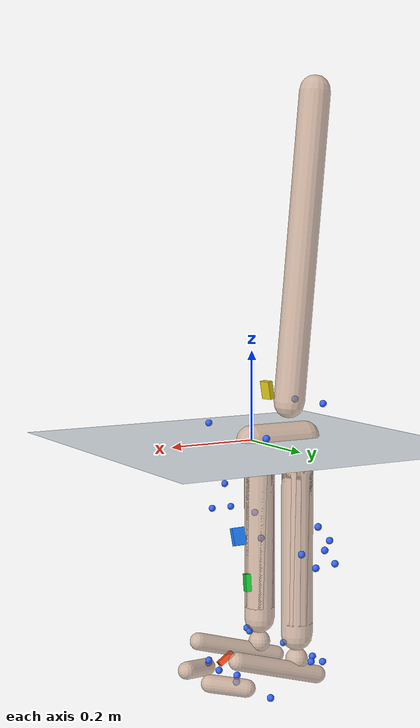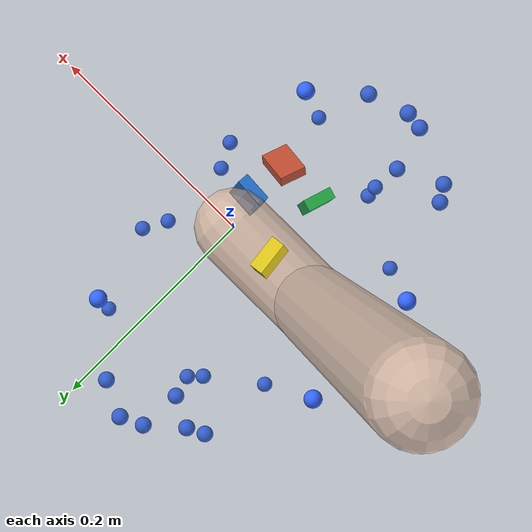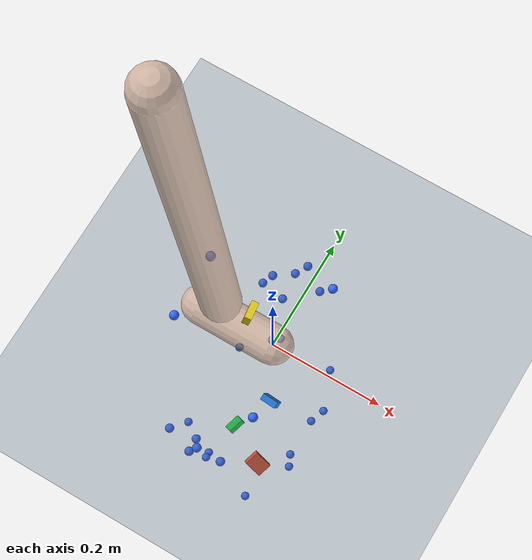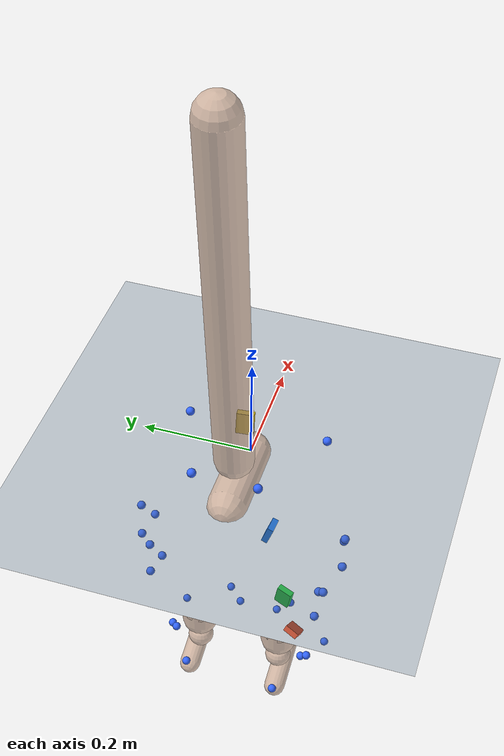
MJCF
<mujoco model="AB10">
  <compiler angle="radian" autolimits="true"/>
  <option timestep="0.005" gravity="0 0 -9.81"><flag contact="disable"/></option>
  <visual><global offwidth="1280" offheight="720"/></visual>
  <default><joint limited="false" damping="0"/><geom contype="0" conaffinity="0"/></default>
  <asset>
    <texture name="grid" type="2d" builtin="checker" rgb1="0.2 0.3 0.4" rgb2="0.3 0.4 0.5" width="512" height="512"/>
    <material name="grid" texture="grid" texrepeat="2 2" texuniform="true"/>
    <material name="skin" rgba="0.8 0.65 0.55 0.7"/>
  </asset>
  <worldbody>
    <light pos="0 0 4" dir="0 0 -1"/>
    <geom name="floor" type="plane" size="0 0 0.05" material="grid"/>
    <body name="pelvis" pos="0 0 0" quat="1 0 0 0">
      <joint name="pelvis_tx" type="slide" axis="1 0 0"/>
      <joint name="pelvis_ty" type="slide" axis="0 0 1"/>
      <joint name="pelvis_tz" type="slide" axis="0 -1 0"/>
      <joint name="pelvis_tilt" type="hinge" axis="0 -1 0"/>
      <joint name="pelvis_list" type="hinge" axis="1 0 0"/>
      <joint name="pelvis_rotation" type="hinge" axis="0 0 1"/>
      <inertial pos="-0.068270285 0 0" mass="13.4215" diaginertia="0.13421502 0.13421502 0.13421502"/>
      <geom type="capsule" fromto="0 0 0 -0.13654057 0 0" size="0.035" material="skin" mass="0"/>
      <site name="m_R_ASIS" pos="0.038416114 -0.12723426 0.026757285" size="0.008" rgba="0.2 0.4 1 1" group="2"/>
      <site name="m_L_ASIS" pos="0.039418578 0.12679107 0.023472" size="0.008" rgba="0.2 0.4 1 1" group="2"/>
      <site name="m_L_PSIS" pos="-0.15084693 0.056858622 0.078959827" size="0.008" rgba="0.2 0.4 1 1" group="2"/>
      <site name="m_R_PSIS" pos="-0.14918613 -0.057842359 0.076927052" size="0.008" rgba="0.2 0.4 1 1" group="2"/>
      <body name="femur_r" pos="-0.068270285 -0.080630393 -0.063828371" quat="1 0 0 0">
        <joint name="hip_flexion_r" type="hinge" axis="0 -1 0"/>
        <joint name="hip_adduction_r" type="hinge" axis="1 0 0"/>
        <joint name="hip_rotation_r" type="hinge" axis="0 0 1"/>
        <inertial pos="0 0 -0.16981628" mass="10.6002" diaginertia="0.10600217 0.10600217 0.10600217"/>
        <geom type="capsule" fromto="0 0 0 0 0 -0.33963257" size="0.035" material="skin" mass="0"/>
        <site name="m_R_Thigh_Upper" pos="0.030077259 -0.10829872 -0.066636975" size="0.008" rgba="0.2 0.4 1 1" group="2"/>
        <site name="m_R_Thigh_Front" pos="0.06919928 -0.099423219 -0.12010598" size="0.008" rgba="0.2 0.4 1 1" group="2"/>
        <site name="m_R_Thigh_Rear" pos="0.012768813 -0.11081967 -0.12308051" size="0.008" rgba="0.2 0.4 1 1" group="2"/>
        <site name="m_R_Knee_Lat" pos="0.00022959524 -0.057643993 -0.40618089" size="0.008" rgba="0.2 0.4 1 1" group="2"/>
        <site name="imu_thigh" type="box" size="0.02 0.015 0.006" pos="0.083379247 0.046599206 -0.15776131" quat="-0.43490094 -0.55937127 0.58547114 -0.39393972" rgba="0.1 0.5 1 1" group="1"/>
        <body name="tibia_r" pos="0 0 0" quat="1 0 0 0">
          <joint name="knee_r_translation1" type="slide" axis="1 0 0"/>
          <joint name="knee_r_translation2" type="slide" axis="0 0 1"/>
          <joint name="knee_angle_r" type="hinge" axis="0 -1 0"/>
          <inertial pos="0 0 -0.18359179" mass="4.2252" diaginertia="0.042252032 0.042252032 0.042252032"/>
          <geom type="capsule" fromto="0 0 0 0 0 -0.36718358" size="0.035" material="skin" mass="0"/>
          <site name="m_R_Shank_Upper" pos="-0.041103485 -0.090265539 -0.13977425" size="0.008" rgba="0.2 0.4 1 1" group="2"/>
          <site name="m_R_Shank_Front" pos="-0.00016861335 -0.073296684 -0.19551104" size="0.008" rgba="0.2 0.4 1 1" group="2"/>
          <site name="m_R_Shank_Rear" pos="-0.052502674 -0.079824174 -0.20083706" size="0.008" rgba="0.2 0.4 1 1" group="2"/>
          <site name="m_R_Ankle_Lat" pos="-0.00090786675 -0.046396653 -0.41126888" size="0.008" rgba="0.2 0.4 1 1" group="2"/>
          <site name="imu_shank" type="box" size="0.02 0.015 0.006" pos="0.033474456 0.0010479344 -0.28011076" quat="0.70053327 0.16387647 0.69287179 -0.048232079" rgba="0.1 0.8 0.2 1" group="1"/>
          <body name="talus_r" pos="0 0 -0.4228413" quat="1 0 0 0">
            <joint name="ankle_angle_r" type="hinge" axis="-0.10501355 -0.97912632 -0.17402245"/>
            <inertial pos="0 0 0" mass="0.113964" diaginertia="0.0011396367 0.0011396367 0.0011396367"/>
            <geom type="sphere" size="0.025" material="skin" mass="0"/>
            <body name="calcn_r" pos="-0.04795807 -0.0077881466 -0.04125161" quat="1 0 0 0">
              <joint name="subtalar_angle_r" type="hinge" axis="0.78717961 0.12094949 0.60474746"/>
              <inertial pos="0.10238969 0 0.030716907" mass="1.42455" diaginertia="0.014245459 0.014245459 0.014245459"/>
              <geom type="capsule" fromto="0 0 0 0.20477938 0 0.061433813" size="0.02" material="skin" mass="0"/>
              <site name="m_R_Heel" pos="-0.023432593 -0.0017730639 0.023436829" size="0.008" rgba="0.2 0.4 1 1" group="2"/>
              <site name="m_R_Toe_Lat" pos="0.14294387 -0.064441714 -0.015746494" size="0.008" rgba="0.2 0.4 1 1" group="2"/>
              <site name="m_R_Toe_Med" pos="0.17841899 0.048083967 0.0022326382" size="0.008" rgba="0.2 0.4 1 1" group="2"/>
              <site name="m_R_Toe_Tip" pos="0.19031655 0.02241146 0.020702757" size="0.008" rgba="0.2 0.4 1 1" group="2"/>
              <site name="imu_foot" type="box" size="0.02 0.015 0.006" pos="0.13329186 -0.001035491 0.0099428629" quat="0.93109115 0.17850214 0.29743149 -0.11287504" rgba="1 0.3 0.1 1" group="1"/>
              <body name="toes_r" pos="0.18307276 -0.0011058086 -0.0020477938" quat="1 0 0 0">
                <joint name="mtp_angle_r" type="hinge" axis="-0.5809544 -0.81393611 0"/>
                <inertial pos="0.035426832 0.017918196 0.0061433813" mass="0.246845" diaginertia="0.0024684532 0.0024684532 0.0024684532"/>
                <geom type="capsule" fromto="0 0 0 0.070853665 0.035836391 0.012286763" size="0.02" material="skin" mass="0"/>
              </body>
            </body>
          </body>
        </body>
      </body>
      <body name="femur_l" pos="-0.068270285 0.080630393 -0.063828371" quat="1 0 0 0">
        <joint name="hip_flexion_l" type="hinge" axis="0 -1 0"/>
        <joint name="hip_adduction_l" type="hinge" axis="-1 0 0"/>
        <joint name="hip_rotation_l" type="hinge" axis="0 0 -1"/>
        <inertial pos="0 0 -0.16981628" mass="10.6002" diaginertia="0.10600217 0.10600217 0.10600217"/>
        <geom type="capsule" fromto="0 0 0 0 0 -0.33963257" size="0.035" material="skin" mass="0"/>
        <site name="m_L_Thigh_Upper" pos="0.022008964 0.11806588 -0.099705511" size="0.008" rgba="0.2 0.4 1 1" group="2"/>
        <site name="m_L_Thigh_Front" pos="0.055716605 0.10609323 -0.15823041" size="0.008" rgba="0.2 0.4 1 1" group="2"/>
        <site name="m_L_Thigh_Rear" pos="0.00048962531 0.11183266 -0.15459779" size="0.008" rgba="0.2 0.4 1 1" group="2"/>
        <site name="m_L_Knee_Lat" pos="0.00052535452 0.059957796 -0.41390898" size="0.008" rgba="0.2 0.4 1 1" group="2"/>
        <body name="tibia_l" pos="0 0 0" quat="1 0 0 0">
          <joint name="knee_l_translation1" type="slide" axis="1 0 0"/>
          <joint name="knee_l_translation2" type="slide" axis="0 0 1"/>
          <joint name="knee_angle_l" type="hinge" axis="0 -1 0"/>
          <inertial pos="0 0 -0.18359179" mass="4.2252" diaginertia="0.042252032 0.042252032 0.042252032"/>
          <geom type="capsule" fromto="0 0 0 0 0 -0.36718358" size="0.035" material="skin" mass="0"/>
          <site name="m_L_Shank_Upper" pos="-0.03047514 0.08385632 -0.14196566" size="0.008" rgba="0.2 0.4 1 1" group="2"/>
          <site name="m_L_Shank_Front" pos="-0.0026613492 0.072459571 -0.20230264" size="0.008" rgba="0.2 0.4 1 1" group="2"/>
          <site name="m_L_Shank_Rear" pos="-0.048404466 0.078589748 -0.19654234" size="0.008" rgba="0.2 0.4 1 1" group="2"/>
          <site name="m_L_Ankle_Lat" pos="-0.01099252 0.04766677 -0.40660312" size="0.008" rgba="0.2 0.4 1 1" group="2"/>
          <body name="talus_l" pos="0 0 -0.4228413" quat="1 0 0 0">
            <joint name="ankle_angle_l" type="hinge" axis="0.10501355 -0.97912632 0.17402245"/>
            <inertial pos="0 0 0" mass="0.113964" diaginertia="0.0011396367 0.0011396367 0.0011396367"/>
            <geom type="sphere" size="0.025" material="skin" mass="0"/>
            <body name="calcn_l" pos="-0.04795807 0.0077881466 -0.04125161" quat="1 0 0 0">
              <joint name="subtalar_angle_l" type="hinge" axis="-0.78717961 0.12094949 -0.60474746"/>
              <inertial pos="0.10238969 0 0.030716907" mass="1.42455" diaginertia="0.014245459 0.014245459 0.014245459"/>
              <geom type="capsule" fromto="0 0 0 0.20477938 0 0.061433813" size="0.02" material="skin" mass="0"/>
              <site name="m_L_Heel" pos="-0.015500553 0.0015369118 0.026750198" size="0.008" rgba="0.2 0.4 1 1" group="2"/>
              <site name="m_L_Toe_Lat" pos="0.1584223 0.062225623 -0.010668709" size="0.008" rgba="0.2 0.4 1 1" group="2"/>
              <site name="m_L_Toe_Med" pos="0.17921606 -0.049064481 -0.0021747638" size="0.008" rgba="0.2 0.4 1 1" group="2"/>
              <site name="m_L_Toe_Tip" pos="0.1919689 -0.024528944 0.021219989" size="0.008" rgba="0.2 0.4 1 1" group="2"/>
              <body name="toes_l" pos="0.18307276 0.0011058086 -0.0020477938" quat="1 0 0 0">
                <joint name="mtp_angle_l" type="hinge" axis="0.5809544 -0.81393611 0"/>
                <inertial pos="0.035426832 -0.017918196 0.0061433813" mass="0.246845" diaginertia="0.0024684532 0.0024684532 0.0024684532"/>
                <geom type="capsule" fromto="0 0 0 0.070853665 -0.035836391 0.012286763" size="0.02" material="skin" mass="0"/>
              </body>
            </body>
          </body>
        </body>
      </body>
      <body name="torso" pos="-0.097239289 0 0.078699126" quat="1 0 0 0">
        <joint name="lumbar_extension" type="hinge" axis="0 -1 0"/>
        <joint name="lumbar_bending" type="hinge" axis="1 0 0"/>
        <joint name="lumbar_rotation" type="hinge" axis="0 0 1"/>
        <inertial pos="-0.032415606 0 0.34576646" mass="39.0173" diaginertia="0.39017287 0.39017287 0.39017287"/>
        <geom type="capsule" fromto="0 0 0 -0.064831212 0 0.69153293" size="0.035" material="skin" mass="0"/>
        <site name="imu_trunk" type="box" size="0.02 0.015 0.006" pos="0.056498768 -0.0015936259 0.031740005" quat="0.64573995 -0.037777832 0.76125472 0.04565103" rgba="0.9 0.8 0.1 1" group="1"/>
      </body>
    </body>
  </worldbody>
  <sensor>
<accelerometer name="imu_foot_acc" site="imu_foot"/>
<gyro name="imu_foot_gyr" site="imu_foot"/>
<accelerometer name="imu_shank_acc" site="imu_shank"/>
<gyro name="imu_shank_gyr" site="imu_shank"/>
<accelerometer name="imu_thigh_acc" site="imu_thigh"/>
<gyro name="imu_thigh_gyr" site="imu_thigh"/>
<accelerometer name="imu_trunk_acc" site="imu_trunk"/>
<gyro name="imu_trunk_gyr" site="imu_trunk"/>
</sensor>
</mujoco>
